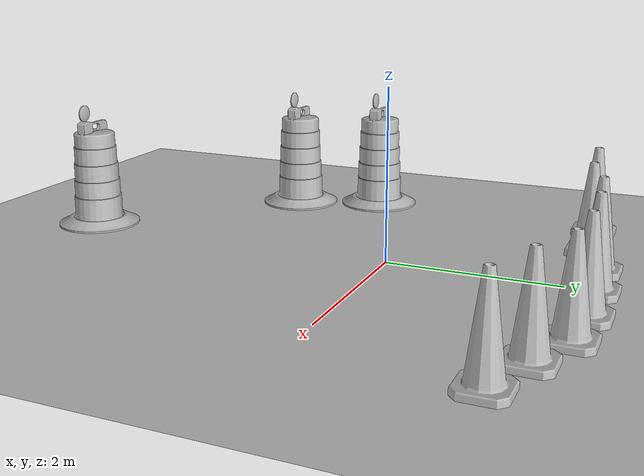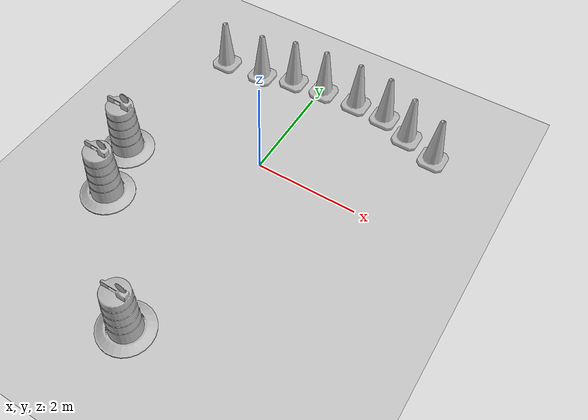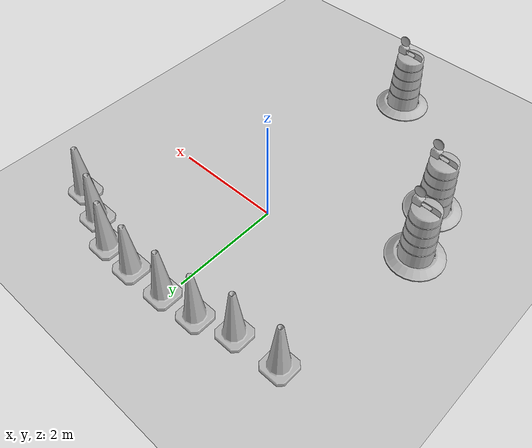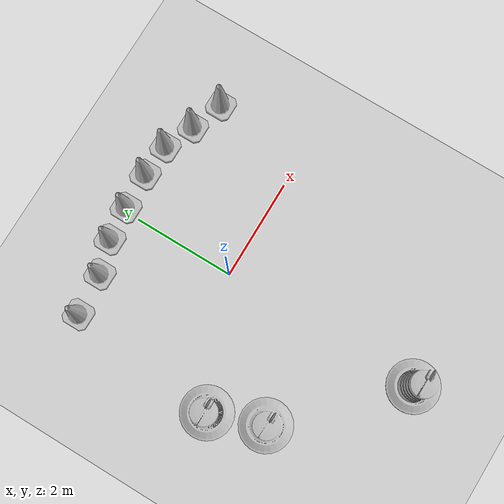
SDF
<sdf version="1.7">
 <world name="default">
  <light name="sun" type="directional">
   <pose>0 0 10 0 -0 0</pose>
   <diffuse>0.8 0.8 0.8 1</diffuse>
   <specular>0.2 0.2 0.2 1</specular>
   <attenuation>
    <range>1000</range>
    <constant>0.9</constant>
    <linear>0.01</linear>
    <quadratic>0.001</quadratic>
   </attenuation>
   <direction>-0.5 0.1 -0.9</direction>
   <spot><inner_angle>0</inner_angle><outer_angle>0</outer_angle><falloff>0</falloff></spot>
  </light>
  <model name="ground_plane">
   <static>1</static>
   <link name="link">
    <collision name="collision">
     <geometry><plane><normal>0 0 1</normal><size>100 100</size></plane></geometry>
     <surface>
      <contact><collide_bitmask>65535</collide_bitmask></contact>
      <friction><ode><mu>100</mu><mu2>50</mu2></ode></friction>
     </surface>
    </collision>
    <visual name="visual">
     <cast_shadows>0</cast_shadows>
     <geometry><plane><normal>0 0 1</normal><size>100 100</size></plane></geometry>
     <material>
      <script><uri>file://media/materials/scripts/gazebo.material</uri><name>Gazebo/Grey</name></script>
     </material>
    </visual>
   </link>
  </model>
  <gravity>0 0 -9.8</gravity>
  <magnetic_field>6e-06 2.3e-05 -4.2e-05</magnetic_field>
  <atmosphere type="adiabatic"/>
  <physics type="ode">
   <max_step_size>0.001</max_step_size>
   <real_time_factor>1</real_time_factor>
   <real_time_update_rate>1000</real_time_update_rate>
  </physics>
  <scene><ambient>0.4 0.4 0.4 1</ambient><background>0.7 0.7 0.7 1</background><shadows>1</shadows></scene>
  <audio><device>default</device></audio>
  <spherical_coordinates>
   <surface_model>EARTH_WGS84</surface_model>
   <latitude_deg>0</latitude_deg>
   <longitude_deg>0</longitude_deg>
   <elevation>0</elevation>
   <heading_deg>0</heading_deg>
  </spherical_coordinates>
  <model name="Construction Barrel">
   <link name="link">
    <inertial>
     <pose>0 0 0.4 0 -0 0</pose>
     <mass>500</mass>
     <inertia><ixx>51.2096</ixx><iyy>51.2096</iyy><izz>25</izz><ixy>0</ixy><ixz>0</ixz><iyz>0</iyz></inertia>
    </inertial>
    <collision name="collision">
     <geometry><mesh><uri>model://construction_barrel/meshes/construction_barrel.dae</uri></mesh></geometry>
    </collision>
    <visual name="visual">
     <geometry><mesh><uri>model://construction_barrel/meshes/construction_barrel.dae</uri></mesh></geometry>
    </visual>
   </link>
   <pose>-2.01187 -2.01844 0 0 0 -0.037435</pose>
  </model>
  <model name="Construction Barrel_0">
   <link name="link">
    <inertial>
     <pose>0 0 0.4 0 -0 0</pose>
     <mass>500</mass>
     <inertia><ixx>51.2096</ixx><iyy>51.2096</iyy><izz>25</izz><ixy>0</ixy><ixz>0</ixz><iyz>0</iyz></inertia>
    </inertial>
    <collision name="collision">
     <geometry><mesh><uri>model://construction_barrel/meshes/construction_barrel.dae</uri></mesh></geometry>
    </collision>
    <visual name="visual">
     <geometry><mesh><uri>model://construction_barrel/meshes/construction_barrel.dae</uri></mesh></geometry>
    </visual>
   </link>
   <pose>-0.00951 -3.95526 -1e-06 3e-06 -2e-06 -2.7e-05</pose>
  </model>
  <model name="Construction Cone">
   <link name="link">
    <collision name="collision">
     <geometry>
      <mesh><scale>10 10 10</scale><uri>model://construction_cone/meshes/construction_cone.dae</uri></mesh>
     </geometry>
    </collision>
    <visual name="visual">
     <geometry>
      <mesh><scale>10 10 10</scale><uri>model://construction_cone/meshes/construction_cone.dae</uri></mesh>
     </geometry>
    </visual>
    <inertial>
     <inertia><ixx>1</ixx><ixy>0</ixy><ixz>0</ixz><iyy>1</iyy><iyz>0</iyz><izz>1</izz></inertia>
     <mass>1</mass>
    </inertial>
   </link>
   <pose>1.45182 2.31445 -0 0 -0 0</pose>
  </model>
  <model name="Construction Cone_0">
   <link name="link">
    <collision name="collision">
     <geometry>
      <mesh><scale>10 10 10</scale><uri>model://construction_cone/meshes/construction_cone.dae</uri></mesh>
     </geometry>
    </collision>
    <visual name="visual">
     <geometry>
      <mesh><scale>10 10 10</scale><uri>model://construction_cone/meshes/construction_cone.dae</uri></mesh>
     </geometry>
    </visual>
    <inertial>
     <inertia><ixx>1</ixx><ixy>0</ixy><ixz>0</ixz><iyy>1</iyy><iyz>0</iyz><izz>1</izz></inertia>
     <mass>1</mass>
    </inertial>
   </link>
   <pose>2.05104 2.0709 -0 0 -1e-06 0</pose>
  </model>
  <model name="Construction Cone_1">
   <link name="link">
    <collision name="collision">
     <geometry>
      <mesh><scale>10 10 10</scale><uri>model://construction_cone/meshes/construction_cone.dae</uri></mesh>
     </geometry>
    </collision>
    <visual name="visual">
     <geometry>
      <mesh><scale>10 10 10</scale><uri>model://construction_cone/meshes/construction_cone.dae</uri></mesh>
     </geometry>
    </visual>
    <inertial>
     <inertia><ixx>1</ixx><ixy>0</ixy><ixz>0</ixz><iyy>1</iyy><iyz>0</iyz><izz>1</izz></inertia>
     <mass>1</mass>
    </inertial>
   </link>
   <pose>2.69858 1.84342 -0 0 -1e-06 0</pose>
  </model>
  <model name="Construction Cone_2">
   <link name="link">
    <collision name="collision">
     <geometry>
      <mesh><scale>10 10 10</scale><uri>model://construction_cone/meshes/construction_cone.dae</uri></mesh>
     </geometry>
    </collision>
    <visual name="visual">
     <geometry>
      <mesh><scale>10 10 10</scale><uri>model://construction_cone/meshes/construction_cone.dae</uri></mesh>
     </geometry>
    </visual>
    <inertial>
     <inertia><ixx>1</ixx><ixy>0</ixy><ixz>0</ixz><iyy>1</iyy><iyz>0</iyz><izz>1</izz></inertia>
     <mass>1</mass>
    </inertial>
   </link>
   <pose>0.799874 2.35002 -0 0 -1e-06 0</pose>
  </model>
  <model name="Construction Cone_3">
   <link name="link">
    <collision name="collision">
     <geometry>
      <mesh><scale>10 10 10</scale><uri>model://construction_cone/meshes/construction_cone.dae</uri></mesh>
     </geometry>
    </collision>
    <visual name="visual">
     <geometry>
      <mesh><scale>10 10 10</scale><uri>model://construction_cone/meshes/construction_cone.dae</uri></mesh>
     </geometry>
    </visual>
    <inertial>
     <inertia><ixx>1</ixx><ixy>0</ixy><ixz>0</ixz><iyy>1</iyy><iyz>0</iyz><izz>1</izz></inertia>
     <mass>1</mass>
    </inertial>
   </link>
   <pose>0.070348 2.31771 -0 0 -1e-06 0</pose>
  </model>
  <model name="Construction Barrel_1">
   <link name="link">
    <inertial>
     <pose>0 0 0.4 0 -0 0</pose>
     <mass>500</mass>
     <inertia><ixx>51.2096</ixx><iyy>51.2096</iyy><izz>25</izz><ixy>0</ixy><ixz>0</ixz><iyz>0</iyz></inertia>
    </inertial>
    <collision name="collision">
     <geometry><mesh><uri>model://construction_barrel/meshes/construction_barrel.dae</uri></mesh></geometry>
    </collision>
    <visual name="visual">
     <geometry><mesh><uri>model://construction_barrel/meshes/construction_barrel.dae</uri></mesh></geometry>
    </visual>
   </link>
   <pose>-2.37164 -0.985066 -2e-06 1e-06 7e-06 -1.1e-05</pose>
  </model>
  <model name="Construction Cone_4">
   <link name="link">
    <collision name="collision">
     <geometry>
      <mesh><scale>10 10 10</scale><uri>model://construction_cone/meshes/construction_cone.dae</uri></mesh>
     </geometry>
    </collision>
    <visual name="visual">
     <geometry>
      <mesh><scale>10 10 10</scale><uri>model://construction_cone/meshes/construction_cone.dae</uri></mesh>
     </geometry>
    </visual>
    <inertial>
     <inertia><ixx>1</ixx><ixy>0</ixy><ixz>0</ixz><iyy>1</iyy><iyz>0</iyz><izz>1</izz></inertia>
     <mass>1</mass>
    </inertial>
   </link>
   <pose>-0.597191 2.24751 -1e-05 0 -0 0</pose>
  </model>
  <model name="Construction Cone_5">
   <link name="link">
    <collision name="collision">
     <geometry>
      <mesh><scale>10 10 10</scale><uri>model://construction_cone/meshes/construction_cone.dae</uri></mesh>
     </geometry>
    </collision>
    <visual name="visual">
     <geometry>
      <mesh><scale>10 10 10</scale><uri>model://construction_cone/meshes/construction_cone.dae</uri></mesh>
     </geometry>
    </visual>
    <inertial>
     <inertia><ixx>1</ixx><ixy>0</ixy><ixz>0</ixz><iyy>1</iyy><iyz>0</iyz><izz>1</izz></inertia>
     <mass>1</mass>
    </inertial>
   </link>
   <pose>-1.24761 2.05232 -0 0 -1e-06 0</pose>
  </model>
  <model name="Construction Cone_6">
   <link name="link">
    <collision name="collision">
     <geometry>
      <mesh><scale>10 10 10</scale><uri>model://construction_cone/meshes/construction_cone.dae</uri></mesh>
     </geometry>
    </collision>
    <visual name="visual">
     <geometry>
      <mesh><scale>10 10 10</scale><uri>model://construction_cone/meshes/construction_cone.dae</uri></mesh>
     </geometry>
    </visual>
    <inertial>
     <inertia><ixx>1</ixx><ixy>0</ixy><ixz>0</ixz><iyy>1</iyy><iyz>0</iyz><izz>1</izz></inertia>
     <mass>1</mass>
    </inertial>
   </link>
   <pose>-2.08478 1.98156 -1e-05 0 1e-06 0</pose>
  </model>
 </world>
</sdf>
